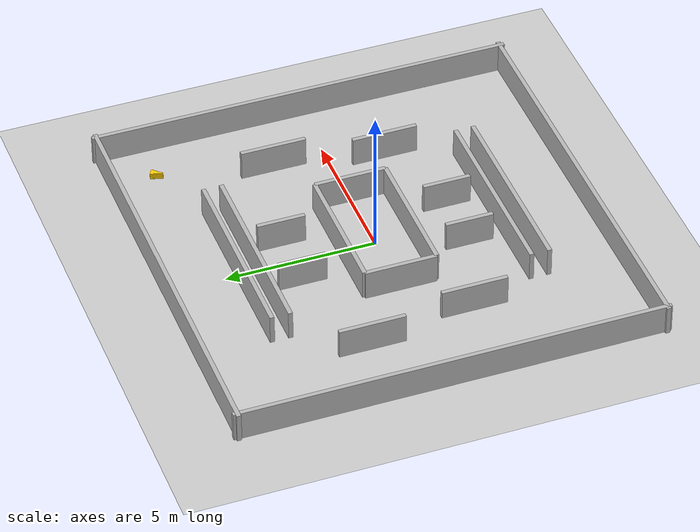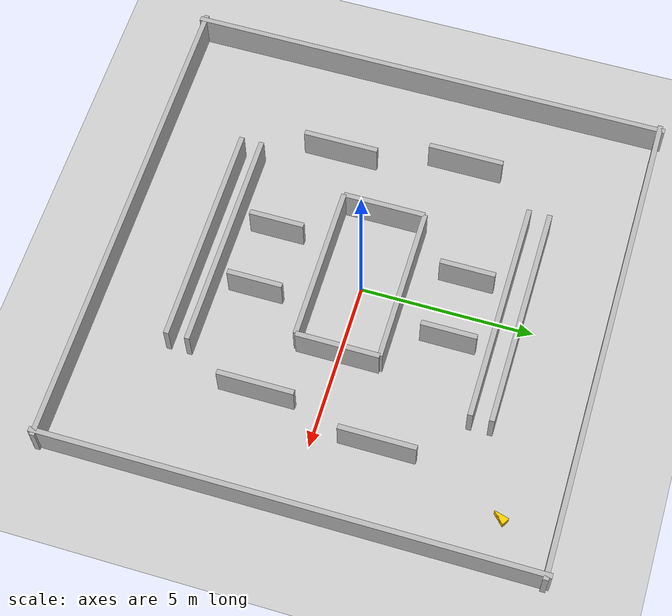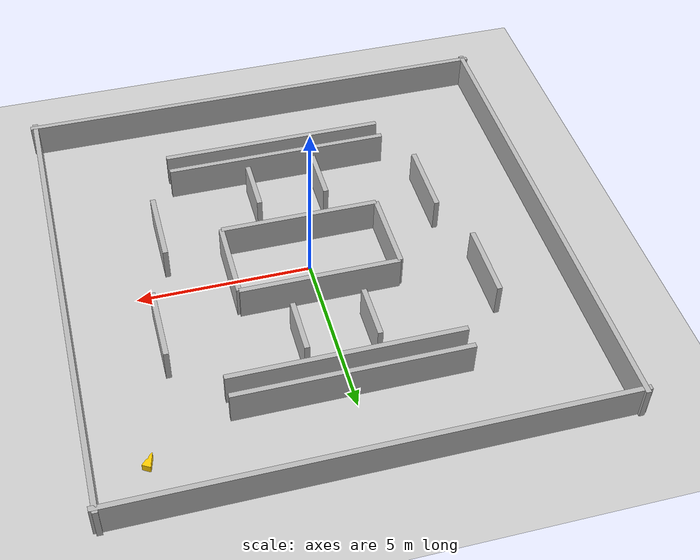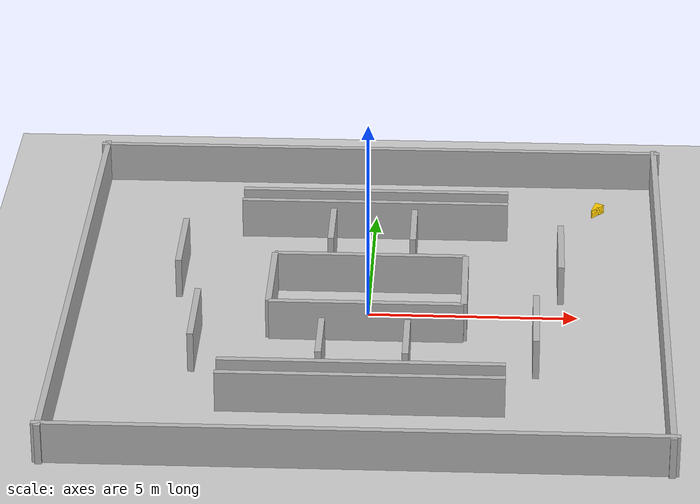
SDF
<?xml version="1.0" ?>
<sdf version="1.8">
    <world name="pac_mouse_maze">
        <physics name="1ms" type="ignored">
            <max_step_size>0.001</max_step_size>
            <real_time_factor>1.0</real_time_factor>
        </physics>

        <plugin filename="gz-sim-physics-system" name="gz::sim::systems::Physics"></plugin>
        <plugin filename="gz-sim-user-commands-system" name="gz::sim::systems::UserCommands"></plugin>
        <plugin filename="gz-sim-scene-broadcaster-system" name="gz::sim::systems::SceneBroadcaster"></plugin>
        <plugin filename="gz-sim-sensors-system" name="gz::sim::systems::Sensors"> <render_engine>ogre2</render_engine> </plugin>

        <light type="directional" name="sun">
            <cast_shadows>true</cast_shadows>
            <pose>0 0 10 0 0 0</pose>
            <diffuse>0.8 0.8 0.8 1</diffuse>
            <specular>0.2 0.2 0.2 1</specular>
            <direction>-0.5 0.1 -0.9</direction>
        </light>

        <model name="ground_plane">
            <static>true</static>
            <link name="link">
                <collision name="collision">
                    <geometry><plane><normal>0 0 1</normal><size>100 100</size></plane></geometry>
                </collision>
                <visual name="visual">
                    <geometry><plane><normal>0 0 1</normal><size>100 100</size></plane></geometry>
                    <material><ambient>0.8 0.8 0.8 1</ambient><diffuse>0.8 0.8 0.8 1</diffuse></material>
                </visual>
            </link>
        </model>

        <model name="wall_n"><static>true</static><link name="l"><pose>0 7 0.5 0 0 0</pose><collision name="c"><geometry><box><size>14.3 0.15 1</size></box></geometry></collision><visual name="v"><geometry><box><size>14.3 0.15 1</size></box></geometry></visual></link></model>
        <model name="wall_s"><static>true</static><link name="l"><pose>0 -7 0.5 0 0 0</pose><collision name="c"><geometry><box><size>14.3 0.15 1</size></box></geometry></collision><visual name="v"><geometry><box><size>14.3 0.15 1</size></box></geometry></visual></link></model>
        <model name="wall_e"><static>true</static><link name="l"><pose>7 0 0.5 0 0 0</pose><collision name="c"><geometry><box><size>0.15 14.3 1</size></box></geometry></collision><visual name="v"><geometry><box><size>0.15 14.3 1</size></box></geometry></visual></link></model>
        <model name="wall_w"><static>true</static><link name="l"><pose>-7 0 0.5 0 0 0</pose><collision name="c"><geometry><box><size>0.15 14.3 1</size></box></geometry></collision><visual name="v"><geometry><box><size>0.15 14.3 1</size></box></geometry></visual></link></model>

        <model name="center_h1"><static>true</static><link name="l"><pose>0 1.2 0.5 0 0 0</pose><collision name="c"><geometry><box><size>4.6 0.15 1</size></box></geometry></collision><visual name="v"><geometry><box><size>4.6 0.15 1</size></box></geometry></visual></link></model>
        <model name="center_h2"><static>true</static><link name="l"><pose>0 -1.2 0.5 0 0 0</pose><collision name="c"><geometry><box><size>4.6 0.15 1</size></box></geometry></collision><visual name="v"><geometry><box><size>4.6 0.15 1</size></box></geometry></visual></link></model>

        <model name="center_v1"><static>true</static><link name="l"><pose>2.3 0 0.5 0 0 0</pose><collision name="c"><geometry><box><size>0.15 2.4 1</size></box></geometry></collision><visual name="v"><geometry><box><size>0.15 2.4 1</size></box></geometry></visual></link></model>
        <model name="center_v2"><static>true</static><link name="l"><pose>-2.3 0 0.5 0 0 0</pose><collision name="c"><geometry><box><size>0.15 2.4 1</size></box></geometry></collision><visual name="v"><geometry><box><size>0.15 2.4 1</size></box></geometry></visual></link></model>

        <model name="mid_n1"><static>true</static><link name="l"><pose>0 4.6 0.5 0 0 0</pose><collision name="c"><geometry><box><size>6.6 0.15 1</size></box></geometry></collision><visual name="v"><geometry><box><size>6.6 0.15 1</size></box></geometry></visual></link></model>
        <model name="mid_n2"><static>true</static><link name="l"><pose>0 4.0 0.5 0 0 0</pose><collision name="c"><geometry><box><size>6.6 0.15 1</size></box></geometry></collision><visual name="v"><geometry><box><size>6.6 0.15 1</size></box></geometry></visual></link></model>

        <model name="mid_s1"><static>true</static><link name="l"><pose>0 -4.6 0.5 0 0 0</pose><collision name="c"><geometry><box><size>6.6 0.15 1</size></box></geometry></collision><visual name="v"><geometry><box><size>6.6 0.15 1</size></box></geometry></visual></link></model>
        <model name="mid_s2"><static>true</static><link name="l"><pose>0 -4.0 0.5 0 0 0</pose><collision name="c"><geometry><box><size>6.6 0.15 1</size></box></geometry></collision><visual name="v"><geometry><box><size>6.6 0.15 1</size></box></geometry></visual></link></model>

        <model name="tooth_n1"><static>true</static><link name="l"><pose>-1.0 2.8 0.5 0 0 0</pose><collision name="c"><geometry><box><size>0.15 1.6 1</size></box></geometry></collision><visual name="v"><geometry><box><size>0.15 1.6 1</size></box></geometry></visual></link></model>
        <model name="tooth_n2"><static>true</static><link name="l"><pose>1.0 2.8 0.5 0 0 0</pose><collision name="c"><geometry><box><size>0.15 1.6 1</size></box></geometry></collision><visual name="v"><geometry><box><size>0.15 1.6 1</size></box></geometry></visual></link></model>

        <model name="tooth_s1"><static>true</static><link name="l"><pose>-1.0 -2.8 0.5 0 0 0</pose><collision name="c"><geometry><box><size>0.15 1.6 1</size></box></geometry></collision><visual name="v"><geometry><box><size>0.15 1.6 1</size></box></geometry></visual></link></model>
        <model name="tooth_s2"><static>true</static><link name="l"><pose>1.0 -2.8 0.5 0 0 0</pose><collision name="c"><geometry><box><size>0.15 1.6 1</size></box></geometry></collision><visual name="v"><geometry><box><size>0.15 1.6 1</size></box></geometry></visual></link></model>

        <model name="side_l1"><static>true</static><link name="l"><pose>-4.6 1.8 0.5 0 0 0</pose><collision name="c"><geometry><box><size>0.15 2.2 1</size></box></geometry></collision><visual name="v"><geometry><box><size>0.15 2.2 1</size></box></geometry></visual></link></model>
        <model name="side_l2"><static>true</static><link name="l"><pose>-4.0 -1.8 0.5 0 0 0</pose><collision name="c"><geometry><box><size>0.15 2.2 1</size></box></geometry></collision><visual name="v"><geometry><box><size>0.15 2.2 1</size></box></geometry></visual></link></model>

        <model name="side_r1"><static>true</static><link name="l"><pose>4.6 1.8 0.5 0 0 0</pose><collision name="c"><geometry><box><size>0.15 2.2 1</size></box></geometry></collision><visual name="v"><geometry><box><size>0.15 2.2 1</size></box></geometry></visual></link></model>
        <model name="side_r2"><static>true</static><link name="l"><pose>4.0 -1.8 0.5 0 0 0</pose><collision name="c"><geometry><box><size>0.15 2.2 1</size></box></geometry></collision><visual name="v"><geometry><box><size>0.15 2.2 1</size></box></geometry></visual></link></model>

        <include>
            <uri>model://cheese_triangle</uri>
            <name>cheese_1</name>
            <pose>5.5 5.5 0.05 0 0 0.78</pose>
        </include>

    </world>
</sdf>

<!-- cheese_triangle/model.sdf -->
<sdf version="1.6">
  <model name="cheese_triangle">
    <static>false</static> <link name="link">

      <inertial>
        <mass>0.1</mass> <inertia>
          <ixx>0.0001</ixx>
          <ixy>0</ixy>
          <ixz>0</ixz>
          <iyy>0.0001</iyy>
          <iyz>0</iyz>
          <izz>0.0001</izz>
        </inertia>
      </inertial>

      <collision name="collision">
        <pose>0 0 0.2 0 0 0</pose>

        <geometry>
          <box>
            <size>0.15 0.15 0.50</size>
          </box>
        </geometry>
      </collision>

      <visual name="visual">
      <pose>0 0 -0.05 1.57 0 0</pose>
        <geometry>
          <mesh>
            <uri>model://cheese_triangle/meshes/cheese_triangle.obj</uri>
            <scale>3 3 3</scale> </mesh>
        </geometry>
        <material>
          <ambient>1 0.8 0 1</ambient>
          <diffuse>1 0.8 0 1</diffuse>
          <specular>0.1 0.1 0.1 1</specular>
        </material>
      </visual>

    </link>
  </model>
</sdf>
